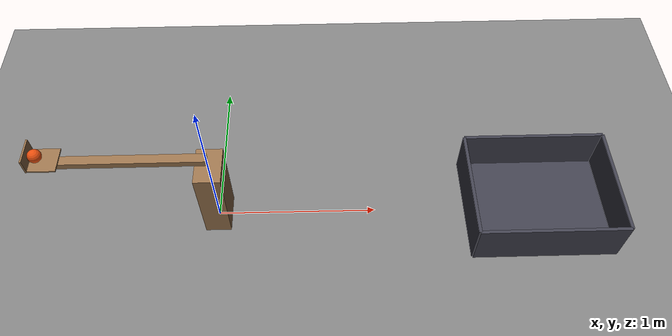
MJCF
<mujoco model="spring_catapult_into_a_bucket">
  <compiler angle="radian"/>
  <option timestep="0.002"/>
  <worldbody>
    <geom name="floor" type="plane" size="8 8 0.1" friction="0.8 0.01 0.005"/>
    <geom name="catapult_stand" type="box" pos="0 0 0.27" size="0.08 0.12 0.27" friction="0.8 0.005 0.0001" rgba="0.6 0.45 0.3 1"/>
    <body name="catapult" pos="0 0 0.6">
      <joint name="catapult_hinge" type="hinge" pos="0 0 0" axis="0 1 0" limited="true" range="0 0.785398" stiffness="5.1" springref="1.5708" damping="0.05" armature="0.01"/>
      <geom name="catapult_arm" type="box" pos="-0.5 0 0" size="0.5 0.03 0.02" mass="0.25" friction="0.8 0.005 0.0001" rgba="0.6 0.45 0.3 1"/>
      <geom name="catapult_scoop_base" type="box" pos="-0.92 0 0.025" size="0.08 0.08 0.005" mass="0.02" friction="0.8 0.005 0.0001" rgba="0.6 0.45 0.3 1"/>
      <geom name="catapult_scoop_back" type="box" pos="-1.005 0 0.07" size="0.005 0.08 0.05" mass="0.01" friction="0.8 0.005 0.0001" rgba="0.6 0.45 0.3 1"/>
    </body>
    <body name="ball" pos="-0.96 0 0.67">
      <freejoint/>
      <geom name="ball" type="sphere" pos="0 0 0" size="0.04" mass="0.15" condim="6" friction="0.8 0.02 0.01" solref="0.01 1" rgba="0.9 0.3 0.05 1"/>
    </body>
    <body name="bucket">
      <geom name="bucket_base" type="box" pos="2.04 0 0.01" size="0.45 0.35 0.01" friction="0.9 0.02 0.01" solref="0.01 1" rgba="0.25 0.25 0.3 1"/>
      <geom name="bucket_near_wall" type="box" pos="1.59 0 0.15" size="0.01 0.35 0.15" friction="0.9 0.02 0.01" solref="0.01 1" rgba="0.25 0.25 0.3 1"/>
      <geom name="bucket_far_wall" type="box" pos="2.49 0 0.15" size="0.01 0.35 0.15" friction="0.9 0.02 0.01" solref="0.01 1" rgba="0.25 0.25 0.3 1"/>
      <geom name="bucket_left_wall" type="box" pos="2.04 0.35 0.15" size="0.45 0.01 0.15" friction="0.9 0.02 0.01" solref="0.01 1" rgba="0.25 0.25 0.3 1"/>
      <geom name="bucket_right_wall" type="box" pos="2.04 -0.35 0.15" size="0.45 0.01 0.15" friction="0.9 0.02 0.01" solref="0.01 1" rgba="0.25 0.25 0.3 1"/>
    </body>
  </worldbody>
  <keyframe>
    <key name="start" qpos="0 -0.96 0 0.67 1 0 0 0" qvel="0 0 0 0 0 0 0"/>
  </keyframe>
</mujoco>
